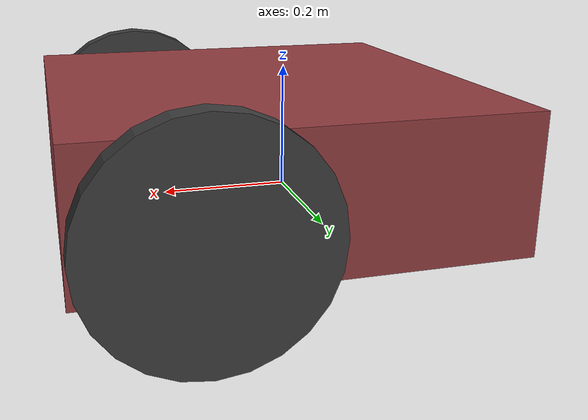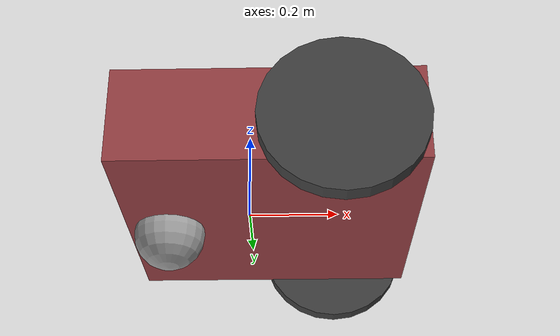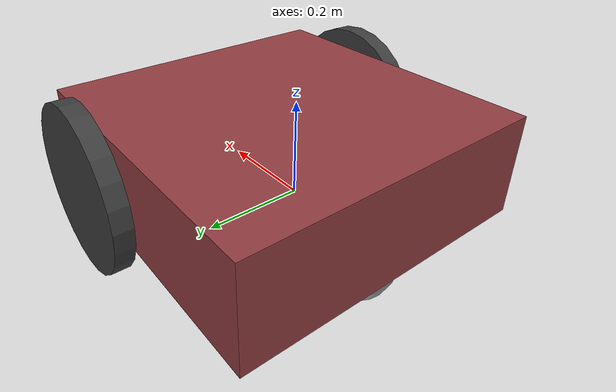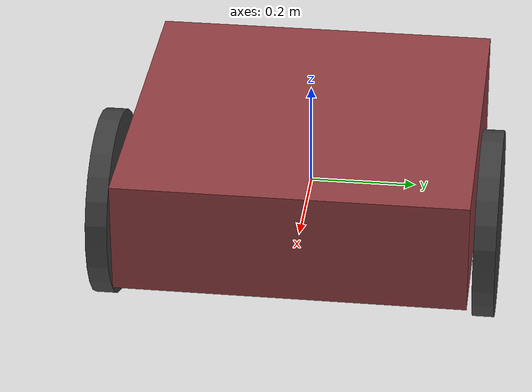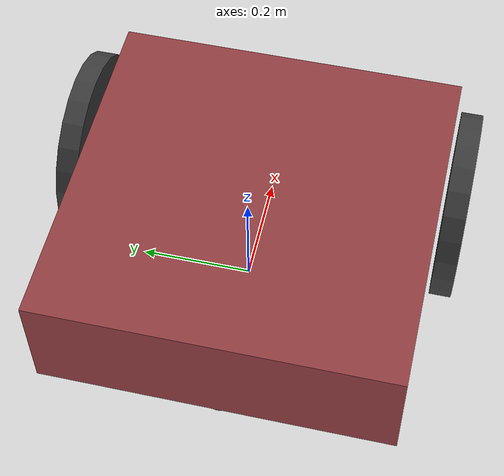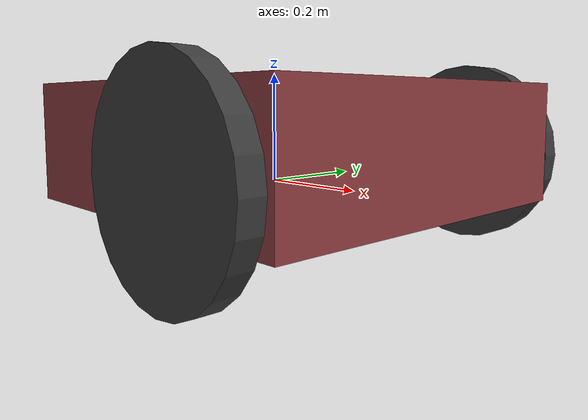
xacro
<?xml version="1.0"?>
<robot xmlns:xacro="http://www.ros.org/wiki/xacro">

      <xacro:include filename="inertial_macros.xacro" />
      <!-- Base link -->

      <link name="base_link">

      </link>

      <!-- Chassis link -->

      <joint name="chassis_joint" type="fixed">
        <parent link="base_link"/>
        <child link="chassis"/>
        <origin xyz="-0.1 0 0"/>
      </joint>

      <link name="chassis">
         <visual>
            <origin xyz="0.15 0 0.075"/>
            <geometry>
               <box size="0.65 0.65 0.213"/>
            </geometry>
            <material name="chassis_material">
               <color rgba="0.573 0.239 0.254 1.0"/>
            </material>
         </visual>
         <collision>
            <origin xyz="0.15 0 0.075"/>
            <geometry>
               <box size="0.65 0.65 0.213"/>
            </geometry>
         </collision>
         <xacro:inertial_box mass="0.9" x="0.65" y="0.65" z="0.213">
            <origin xyz="0.15 0 0.075" rpy="0 0 0"/>
         </xacro:inertial_box>
      </link>

      <!-- Left wheel link -->
      <joint name="left_wheel_joint" type="continuous">
        <parent link="base_link"/>
        <child link="left_wheel"/>
        <origin xyz="0.2 0.353 0.048" rpy="-${pi/2} 0 0"/>
        <axis xyz="0 0 1"/>
      </joint>

      <link name="left_wheel">
         <visual>
            <geometry>
               <cylinder radius="0.173" length="0.04"/>
            </geometry>
            <material name="wheel_material">
               <color rgba="0.239 0.239 0.239 1.0"/>
            </material>
         </visual>
         <collision>
            <geometry>
               <cylinder radius="0.173" length="0.04"/>
            </geometry>
         </collision>
         <xacro:inertial_cylinder mass="0.2" length="0.04" radius="0.173">
            <origin xyz="0 0 0" rpy="0 0 0"/>
         </xacro:inertial_cylinder>
      </link>

      <!-- Right wheel link -->
      <joint name="right_wheel_joint" type="continuous">
        <parent link="base_link"/>
        <child link="right_wheel"/>
        <origin xyz="0.2 -0.353 0.048" rpy="${pi/2} 0 0"/>
        <axis xyz="0 0 -1"/>
      </joint>

      <link name="right_wheel">
         <visual>
            <geometry>
               <cylinder radius="0.173" length="0.04"/>
            </geometry>
            <material name="wheel_material">
                <color rgba="0.239 0.239 0.239 1.0"/>
            </material>
         </visual>
         <collision>
            <geometry>
               <cylinder radius="0.173" length="0.04"/>
            </geometry>
         </collision>
            <xacro:inertial_cylinder mass="0.2" length="0.04" radius="0.173">
            <origin xyz="0 0 0" rpy="0 0 0"/>
         </xacro:inertial_cylinder>
      </link>

      <!-- Castor wheel link -->
      <joint name="castor_wheel_joint" type="fixed">
        <parent link="chassis"/>
        <child link="castor_wheel"/>
        <origin xyz="-0.08 0 -0.048"/>
      </joint>

      <link name="castor_wheel">
         <visual>
            <geometry>
               <sphere radius="0.08"/>
            </geometry>
            <material name="castor_material">
                <color rgba="0.62 0.62 0.62 1.0"/>
            </material>
         </visual>
         <collision>
            <geometry>
               <sphere radius="0.08"/>
            </geometry>
         </collision>
         <xacro:inertial_sphere mass="0.15" radius="0.08">
            <origin xyz="0 0 0" rpy="0 0 0"/>
         </xacro:inertial_sphere>
      </link>

      <!-- Gazebo Parameters -->
      <gazebo reference="chassis_link">
         <mu1>1.0</mu1>
         <mu2>1.0</mu2>
      </gazebo>

      <gazebo reference="right_wheel">
         <mu1>1.0</mu1>
         <mu2>1.0</mu2>
      </gazebo>

      <gazebo reference="left_wheel">
         <mu1>1.0</mu1>
         <mu2>1.0</mu2>
      </gazebo>

      <gazebo reference="castor_wheel">
         <mu1>0.000001</mu1>
         <mu2>0.000001</mu2>
      </gazebo>

</robot>
